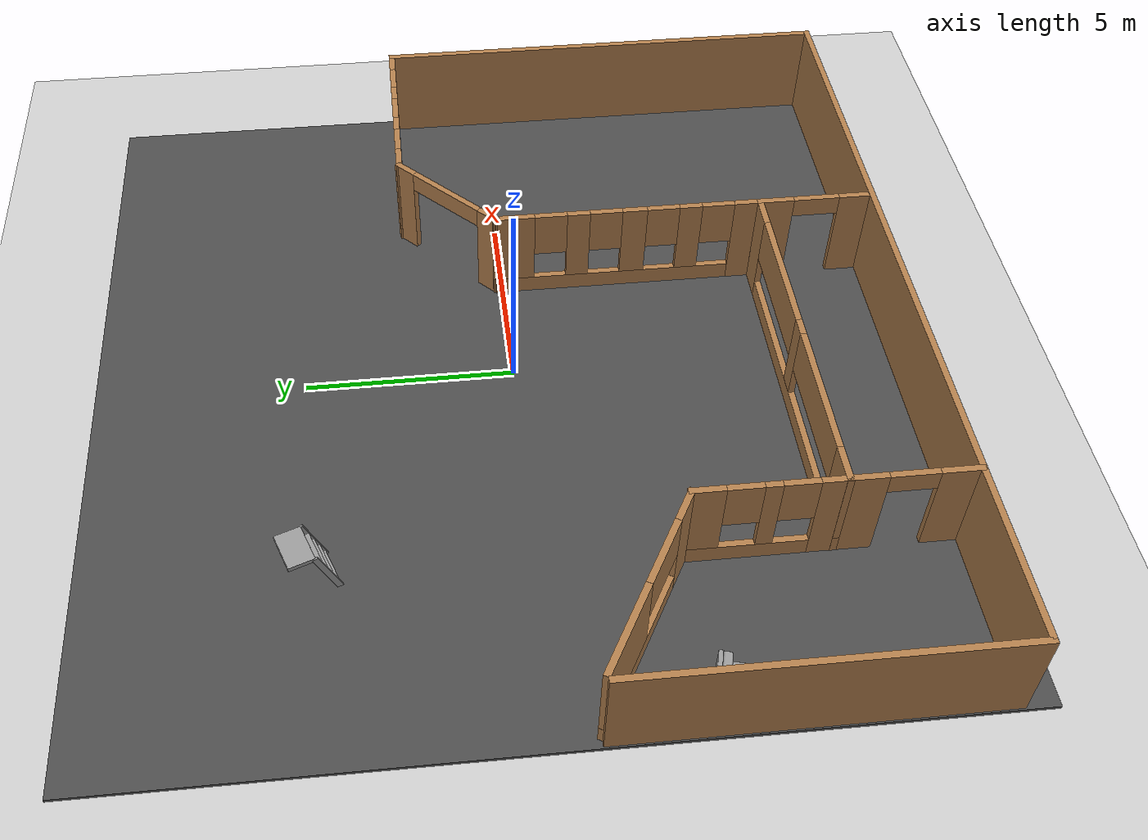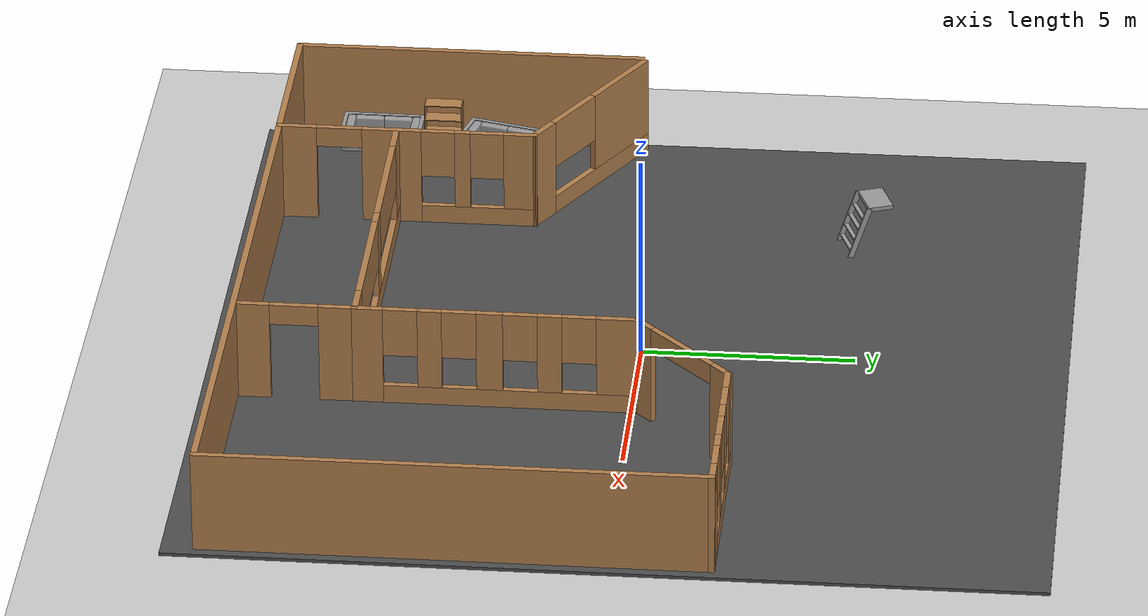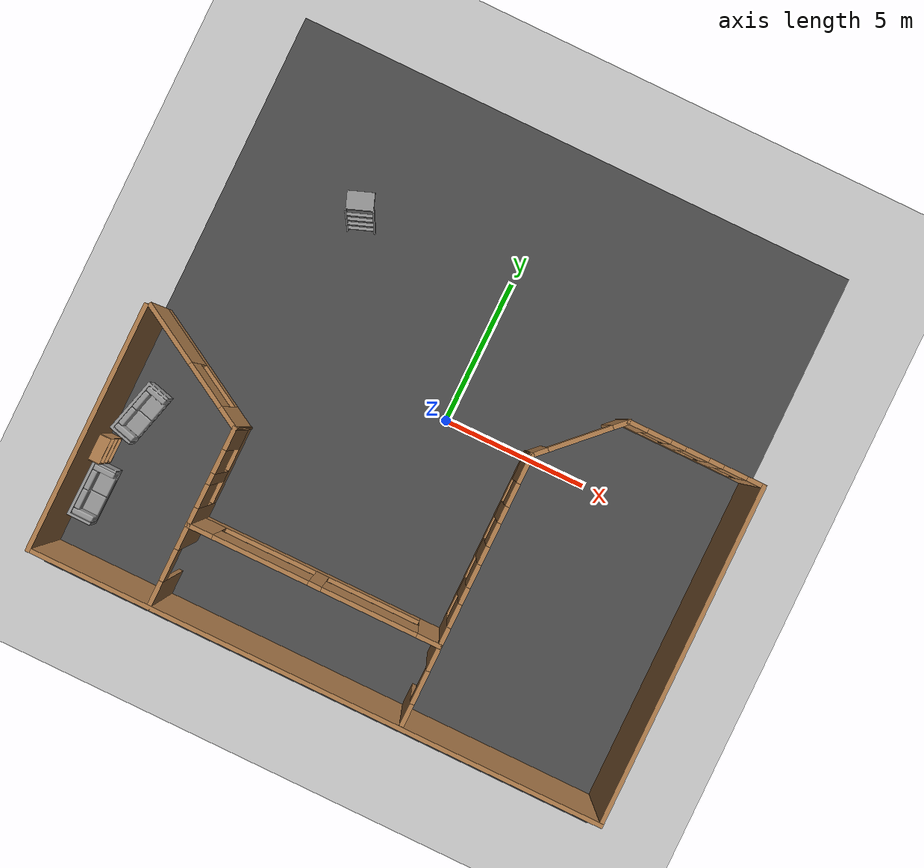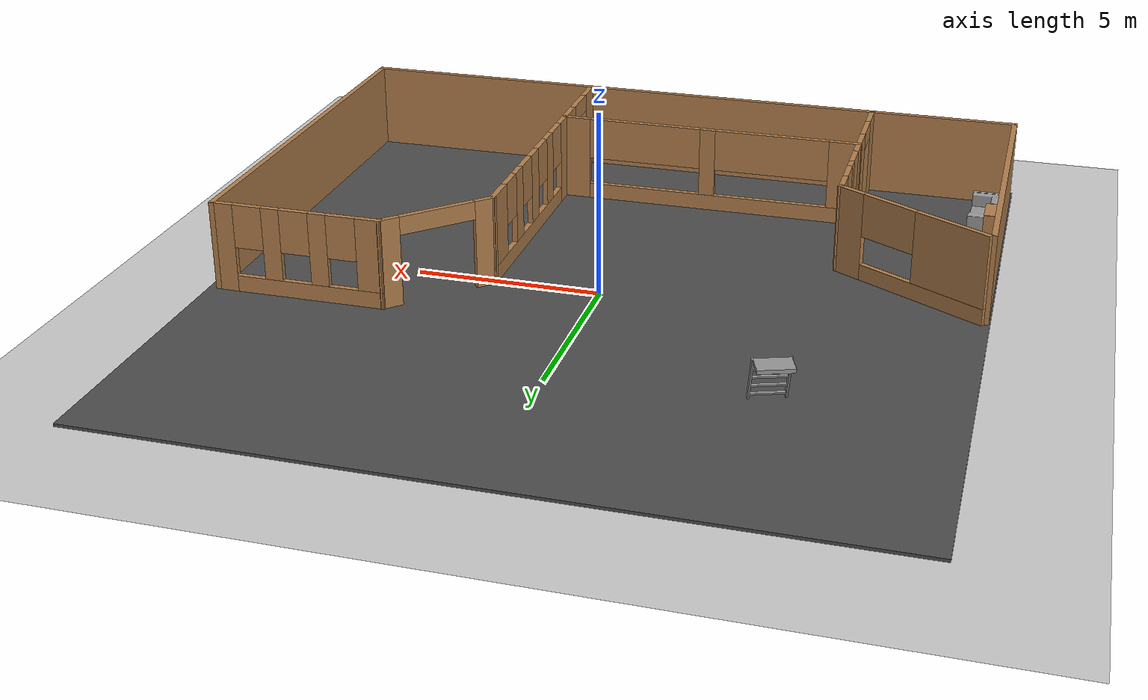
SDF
<sdf version="1.6">
 <world name="default">
  <light name="sun" type="directional">
   <pose>0 0 10 0 -0 0</pose>
   <diffuse>0.8 0.8 0.8 1</diffuse>
   <specular>0.1 0.1 0.1 1</specular>
   <attenuation>
    <range>1000</range>
    <constant>0.9</constant>
    <linear>0.01</linear>
    <quadratic>0.001</quadratic>
   </attenuation>
   <direction>-0.5 0.5 -1</direction>
  </light>
  <model name="ground_plane">
   <static>1</static>
   <link name="link">
    <collision name="collision">
     <geometry><plane><normal>0 0 1</normal><size>100 100</size></plane></geometry>
     <surface><friction><ode><mu>100</mu><mu2>50</mu2></ode></friction></surface>
    </collision>
    <visual name="visual">
     <cast_shadows>0</cast_shadows>
     <geometry><plane><normal>0 0 1</normal><size>100 100</size></plane></geometry>
     <material>
      <script><uri>file://media/materials/scripts/gazebo.material</uri><name>Gazebo/Grey</name></script>
     </material>
    </visual>
   </link>
  </model>
  <gravity>0 0 -9.8</gravity>
  <magnetic_field>6e-06 2.3e-05 -4.2e-05</magnetic_field>
  <atmosphere type="adiabatic"/>
  <physics name="default_physics" default="0" type="ode">
   <max_step_size>0.001</max_step_size>
   <real_time_factor>1</real_time_factor>
   <real_time_update_rate>1000</real_time_update_rate>
  </physics>
  <scene><ambient>0.4 0.4 0.4 1</ambient><background>0.7 0.7 0.7 1</background><shadows>1</shadows></scene>
  <spherical_coordinates>
   <surface_model>EARTH_WGS84</surface_model>
   <latitude_deg>0</latitude_deg>
   <longitude_deg>0</longitude_deg>
   <elevation>0</elevation>
   <heading_deg>0</heading_deg>
  </spherical_coordinates>
  <model name="Robocup">
   <pose>-0.0925 -3.37243 0 0 -0 0</pose>
   <link name="Wall_13">
    <collision name="Wall_13_Collision">
     <geometry><box><size>8.5 0.15 2.5</size></box></geometry>
     <pose>0 0 1.25 0 -0 0</pose>
    </collision>
    <visual name="Wall_13_Visual">
     <pose>0 0 1.25 0 -0 0</pose>
     <geometry><box><size>8.5 0.15 2.5</size></box></geometry>
     <material>
      <script><uri>file://media/materials/scripts/gazebo.material</uri><name>Gazebo/Wood</name></script>
      <ambient>1 1 1 1</ambient>
     </material>
     <meta><layer>0</layer></meta>
    </visual>
    <pose>-9.8 -1.64053 0 0 0 -1.5708</pose>
   </link>
   <link name="Wall_15">
    <collision name="Wall_15_Collision">
     <geometry><box><size>19.75 0.15 2.5</size></box></geometry>
     <pose>0 0 1.25 0 -0 0</pose>
    </collision>
    <visual name="Wall_15_Visual">
     <pose>0 0 1.25 0 -0 0</pose>
     <geometry><box><size>19.75 0.15 2.5</size></box></geometry>
     <material>
      <script><uri>file://media/materials/scripts/gazebo.material</uri><name>Gazebo/Wood</name></script>
      <ambient>1 1 1 1</ambient>
     </material>
     <meta><layer>0</layer></meta>
    </visual>
    <pose>0 -5.81553 0 0 -0 0</pose>
   </link>
   <link name="Wall_17">
    <collision name="Wall_17_Collision">
     <geometry><box><size>11.75 0.15 2.5</size></box></geometry>
     <pose>0 0 1.25 0 -0 0</pose>
    </collision>
    <visual name="Wall_17_Visual">
     <pose>0 0 1.25 0 -0 0</pose>
     <geometry><box><size>11.75 0.15 2.5</size></box></geometry>
     <material>
      <script><uri>file://media/materials/scripts/gazebo.material</uri><name>Gazebo/Wood</name></script>
      <ambient>1 1 1 1</ambient>
     </material>
     <meta><layer>0</layer></meta>
    </visual>
    <pose>9.8 -0.015532 0 0 -0 1.5708</pose>
   </link>
   <link name="Wall_18">
    <pose>7.5 5.78447 0 0 -0 3.14159</pose>
    <visual name="Wall_18_Visual_0">
     <pose>-2.04757 0 1.25 0 -0 0</pose>
     <geometry><box><size>0.654861 0.15 2.5</size></box></geometry>
     <material>
      <script><uri>file://media/materials/scripts/gazebo.material</uri><name>Gazebo/Wood</name></script>
      <ambient>1 1 1 1</ambient>
     </material>
     <meta><layer>0</layer></meta>
    </visual>
    <collision name="Wall_18_Collision_0">
     <geometry><box><size>0.654861 0.15 2.5</size></box></geometry>
     <pose>-2.04757 0 1.25 0 -0 0</pose>
    </collision>
    <visual name="Wall_18_Visual_1">
     <pose>0.327431 0 0.25 0 -0 0</pose>
     <geometry><box><size>4.09514 0.15 0.5</size></box></geometry>
     <material>
      <script><uri>file://media/materials/scripts/gazebo.material</uri><name>Gazebo/Wood</name></script>
      <ambient>1 1 1 1</ambient>
     </material>
     <meta><layer>0</layer></meta>
    </visual>
    <collision name="Wall_18_Collision_1">
     <geometry><box><size>4.09514 0.15 0.5</size></box></geometry>
     <pose>0.327431 0 0.25 0 -0 0</pose>
    </collision>
    <visual name="Wall_18_Visual_2">
     <pose>-0.672482 0 1.5 0 -0 0</pose>
     <geometry><box><size>0.495314 0.15 2</size></box></geometry>
     <material>
      <script><uri>file://media/materials/scripts/gazebo.material</uri><name>Gazebo/Wood</name></script>
      <ambient>1 1 1 1</ambient>
     </material>
     <meta><layer>0</layer></meta>
    </visual>
    <collision name="Wall_18_Collision_2">
     <geometry><box><size>0.495314 0.15 2</size></box></geometry>
     <pose>-0.672482 0 1.5 0 -0 0</pose>
    </collision>
    <visual name="Wall_18_Visual_3">
     <pose>0.622832 0 1.5 0 -0 0</pose>
     <geometry><box><size>0.495314 0.15 2</size></box></geometry>
     <material>
      <script><uri>file://media/materials/scripts/gazebo.material</uri><name>Gazebo/Wood</name></script>
      <ambient>1 1 1 1</ambient>
     </material>
     <meta><layer>0</layer></meta>
    </visual>
    <collision name="Wall_18_Collision_3">
     <geometry><box><size>0.495314 0.15 2</size></box></geometry>
     <pose>0.622832 0 1.5 0 -0 0</pose>
    </collision>
    <visual name="Wall_18_Visual_4">
     <pose>2.02275 0 1.5 0 -0 0</pose>
     <geometry><box><size>0.704511 0.15 2</size></box></geometry>
     <material>
      <script><uri>file://media/materials/scripts/gazebo.material</uri><name>Gazebo/Wood</name></script>
      <ambient>1 1 1 1</ambient>
     </material>
     <meta><layer>0</layer></meta>
    </visual>
    <collision name="Wall_18_Collision_4">
     <geometry><box><size>0.704511 0.15 2</size></box></geometry>
     <pose>2.02275 0 1.5 0 -0 0</pose>
    </collision>
    <visual name="Wall_18_Visual_5">
     <pose>-1.32014 0 1.9 0 -0 0</pose>
     <geometry><box><size>0.8 0.15 1.2</size></box></geometry>
     <material>
      <script><uri>file://media/materials/scripts/gazebo.material</uri><name>Gazebo/Wood</name></script>
      <ambient>1 1 1 1</ambient>
     </material>
     <meta><layer>0</layer></meta>
    </visual>
    <collision name="Wall_18_Collision_5">
     <geometry><box><size>0.8 0.15 1.2</size></box></geometry>
     <pose>-1.32014 0 1.9 0 -0 0</pose>
    </collision>
    <visual name="Wall_18_Visual_6">
     <pose>-0.024825 0 1.9 0 -0 0</pose>
     <geometry><box><size>0.8 0.15 1.2</size></box></geometry>
     <material>
      <script><uri>file://media/materials/scripts/gazebo.material</uri><name>Gazebo/Wood</name></script>
      <ambient>1 1 1 1</ambient>
     </material>
     <meta><layer>0</layer></meta>
    </visual>
    <collision name="Wall_18_Collision_6">
     <geometry><box><size>0.8 0.15 1.2</size></box></geometry>
     <pose>-0.024825 0 1.9 0 -0 0</pose>
    </collision>
    <visual name="Wall_18_Visual_7">
     <pose>1.27049 0 1.9 0 -0 0</pose>
     <geometry><box><size>0.8 0.15 1.2</size></box></geometry>
     <material>
      <script><uri>file://media/materials/scripts/gazebo.material</uri><name>Gazebo/Wood</name></script>
      <ambient>1 1 1 1</ambient>
     </material>
     <meta><layer>0</layer></meta>
    </visual>
    <collision name="Wall_18_Collision_7">
     <geometry><box><size>0.8 0.15 1.2</size></box></geometry>
     <pose>1.27049 0 1.9 0 -0 0</pose>
    </collision>
   </link>
   <link name="Wall_22">
    <pose>-1.38838 -2.99714 0 0 -0 3.14159</pose>
    <visual name="Wall_22_Visual_0">
     <pose>-3.95278 0 1.25 0 -0 0</pose>
     <geometry><box><size>0.844442 0.15 2.5</size></box></geometry>
     <material>
      <script><uri>file://media/materials/scripts/gazebo.material</uri><name>Gazebo/Wood</name></script>
      <ambient>1 1 1 1</ambient>
     </material>
     <meta><layer>0</layer></meta>
    </visual>
    <collision name="Wall_22_Collision_0">
     <geometry><box><size>0.844442 0.15 2.5</size></box></geometry>
     <pose>-3.95278 0 1.25 0 -0 0</pose>
    </collision>
    <visual name="Wall_22_Visual_1">
     <pose>0.422221 0 0.25 0 -0 0</pose>
     <geometry><box><size>7.90556 0.15 0.5</size></box></geometry>
     <material>
      <script><uri>file://media/materials/scripts/gazebo.material</uri><name>Gazebo/Wood</name></script>
      <ambient>1 1 1 1</ambient>
     </material>
     <meta><layer>0</layer></meta>
    </visual>
    <collision name="Wall_22_Collision_1">
     <geometry><box><size>7.90556 0.15 0.5</size></box></geometry>
     <pose>0.422221 0 0.25 0 -0 0</pose>
    </collision>
    <visual name="Wall_22_Visual_2">
     <pose>-0.031057 0 1.5 0 -0 0</pose>
     <geometry><box><size>0.449053 0.15 2</size></box></geometry>
     <material>
      <script><uri>file://media/materials/scripts/gazebo.material</uri><name>Gazebo/Wood</name></script>
      <ambient>1 1 1 1</ambient>
     </material>
     <meta><layer>0</layer></meta>
    </visual>
    <collision name="Wall_22_Collision_2">
     <geometry><box><size>0.449053 0.15 2</size></box></geometry>
     <pose>-0.031057 0 1.5 0 -0 0</pose>
    </collision>
    <visual name="Wall_22_Visual_3">
     <pose>3.92172 0 1.5 0 -0 0</pose>
     <geometry><box><size>0.906555 0.15 2</size></box></geometry>
     <material>
      <script><uri>file://media/materials/scripts/gazebo.material</uri><name>Gazebo/Wood</name></script>
      <ambient>1 1 1 1</ambient>
     </material>
     <meta><layer>0</layer></meta>
    </visual>
    <collision name="Wall_22_Collision_3">
     <geometry><box><size>0.906555 0.15 2</size></box></geometry>
     <pose>3.92172 0 1.5 0 -0 0</pose>
    </collision>
    <visual name="Wall_22_Visual_4">
     <pose>-1.89307 0 1.9 0 -0 0</pose>
     <geometry><box><size>3.27497 0.15 1.2</size></box></geometry>
     <material>
      <script><uri>file://media/materials/scripts/gazebo.material</uri><name>Gazebo/Wood</name></script>
      <ambient>1 1 1 1</ambient>
     </material>
     <meta><layer>0</layer></meta>
    </visual>
    <collision name="Wall_22_Collision_4">
     <geometry><box><size>3.27497 0.15 1.2</size></box></geometry>
     <pose>-1.89307 0 1.9 0 -0 0</pose>
    </collision>
    <visual name="Wall_22_Visual_5">
     <pose>1.83096 0 1.9 0 -0 0</pose>
     <geometry><box><size>3.27497 0.15 1.2</size></box></geometry>
     <material>
      <script><uri>file://media/materials/scripts/gazebo.material</uri><name>Gazebo/Wood</name></script>
      <ambient>1 1 1 1</ambient>
     </material>
     <meta><layer>0</layer></meta>
    </visual>
    <collision name="Wall_22_Collision_5">
     <geometry><box><size>3.27497 0.15 1.2</size></box></geometry>
     <pose>1.83096 0 1.9 0 -0 0</pose>
    </collision>
   </link>
   <link name="Wall_26">
    <pose>2.93475 0.272603 0 0 -0 1.5708</pose>
    <visual name="Wall_26_Visual_0">
     <pose>-2.98586 0 1.25 0 -0 0</pose>
     <geometry><box><size>0.718408 0.15 2.5</size></box></geometry>
     <material>
      <script><uri>file://media/materials/scripts/gazebo.material</uri><name>Gazebo/Wood</name></script>
      <ambient>1 1 1 1</ambient>
     </material>
     <meta><layer>0</layer></meta>
    </visual>
    <collision name="Wall_26_Collision_0">
     <geometry><box><size>0.718408 0.15 2.5</size></box></geometry>
     <pose>-2.98586 0 1.25 0 -0 0</pose>
    </collision>
    <visual name="Wall_26_Visual_1">
     <pose>0.359204 0 0.25 0 -0 0</pose>
     <geometry><box><size>5.97173 0.15 0.5</size></box></geometry>
     <material>
      <script><uri>file://media/materials/scripts/gazebo.material</uri><name>Gazebo/Wood</name></script>
      <ambient>1 1 1 1</ambient>
     </material>
     <meta><layer>0</layer></meta>
    </visual>
    <collision name="Wall_26_Collision_1">
     <geometry><box><size>5.97173 0.15 0.5</size></box></geometry>
     <pose>0.359204 0 0.25 0 -0 0</pose>
    </collision>
    <visual name="Wall_26_Visual_2">
     <pose>-1.54474 0 1.5 0 -0 0</pose>
     <geometry><box><size>0.563839 0.15 2</size></box></geometry>
     <material>
      <script><uri>file://media/materials/scripts/gazebo.material</uri><name>Gazebo/Wood</name></script>
      <ambient>1 1 1 1</ambient>
     </material>
     <meta><layer>0</layer></meta>
    </visual>
    <collision name="Wall_26_Collision_2">
     <geometry><box><size>0.563839 0.15 2</size></box></geometry>
     <pose>-1.54474 0 1.5 0 -0 0</pose>
    </collision>
    <visual name="Wall_26_Visual_3">
     <pose>-0.156104 0 1.5 0 -0 0</pose>
     <geometry><box><size>0.613433 0.15 2</size></box></geometry>
     <material>
      <script><uri>file://media/materials/scripts/gazebo.material</uri><name>Gazebo/Wood</name></script>
      <ambient>1 1 1 1</ambient>
     </material>
     <meta><layer>0</layer></meta>
    </visual>
    <collision name="Wall_26_Collision_3">
     <geometry><box><size>0.613433 0.15 2</size></box></geometry>
     <pose>-0.156104 0 1.5 0 -0 0</pose>
    </collision>
    <visual name="Wall_26_Visual_4">
     <pose>1.23253 0 1.5 0 -0 0</pose>
     <geometry><box><size>0.563839 0.15 2</size></box></geometry>
     <material>
      <script><uri>file://media/materials/scripts/gazebo.material</uri><name>Gazebo/Wood</name></script>
      <ambient>1 1 1 1</ambient>
     </material>
     <meta><layer>0</layer></meta>
    </visual>
    <collision name="Wall_26_Collision_4">
     <geometry><box><size>0.563839 0.15 2</size></box></geometry>
     <pose>1.23253 0 1.5 0 -0 0</pose>
    </collision>
    <visual name="Wall_26_Visual_5">
     <pose>2.82976 0 1.5 0 -0 0</pose>
     <geometry><box><size>1.03062 0.15 2</size></box></geometry>
     <material>
      <script><uri>file://media/materials/scripts/gazebo.material</uri><name>Gazebo/Wood</name></script>
      <ambient>1 1 1 1</ambient>
     </material>
     <meta><layer>0</layer></meta>
    </visual>
    <collision name="Wall_26_Collision_5">
     <geometry><box><size>1.03062 0.15 2</size></box></geometry>
     <pose>2.82976 0 1.5 0 -0 0</pose>
    </collision>
    <visual name="Wall_26_Visual_6">
     <pose>-2.22666 0 1.9 0 -0 0</pose>
     <geometry><box><size>0.8 0.15 1.2</size></box></geometry>
     <material>
      <script><uri>file://media/materials/scripts/gazebo.material</uri><name>Gazebo/Wood</name></script>
      <ambient>1 1 1 1</ambient>
     </material>
     <meta><layer>0</layer></meta>
    </visual>
    <collision name="Wall_26_Collision_6">
     <geometry><box><size>0.8 0.15 1.2</size></box></geometry>
     <pose>-2.22666 0 1.9 0 -0 0</pose>
    </collision>
    <visual name="Wall_26_Visual_7">
     <pose>-0.862821 0 1.9 0 -0 0</pose>
     <geometry><box><size>0.8 0.15 1.2</size></box></geometry>
     <material>
      <script><uri>file://media/materials/scripts/gazebo.material</uri><name>Gazebo/Wood</name></script>
      <ambient>1 1 1 1</ambient>
     </material>
     <meta><layer>0</layer></meta>
    </visual>
    <collision name="Wall_26_Collision_7">
     <geometry><box><size>0.8 0.15 1.2</size></box></geometry>
     <pose>-0.862821 0 1.9 0 -0 0</pose>
    </collision>
    <visual name="Wall_26_Visual_8">
     <pose>0.550613 0 1.9 0 -0 0</pose>
     <geometry><box><size>0.8 0.15 1.2</size></box></geometry>
     <material>
      <script><uri>file://media/materials/scripts/gazebo.material</uri><name>Gazebo/Wood</name></script>
      <ambient>1 1 1 1</ambient>
     </material>
     <meta><layer>0</layer></meta>
    </visual>
    <collision name="Wall_26_Collision_8">
     <geometry><box><size>0.8 0.15 1.2</size></box></geometry>
     <pose>0.550613 0 1.9 0 -0 0</pose>
    </collision>
    <visual name="Wall_26_Visual_9">
     <pose>1.91445 0 1.9 0 -0 0</pose>
     <geometry><box><size>0.8 0.15 1.2</size></box></geometry>
     <material>
      <script><uri>file://media/materials/scripts/gazebo.material</uri><name>Gazebo/Wood</name></script>
      <ambient>1 1 1 1</ambient>
     </material>
     <meta><layer>0</layer></meta>
    </visual>
    <collision name="Wall_26_Collision_9">
     <geometry><box><size>0.8 0.15 1.2</size></box></geometry>
     <pose>1.91445 0 1.9 0 -0 0</pose>
    </collision>
   </link>
   <link name="Wall_30">
    <pose>4.06737 4.66341 0 0 -0 0.780266</pose>
    <visual name="Wall_30_Visual_0">
     <pose>-1.36338 0 1.25 0 -0 0</pose>
     <geometry><box><size>0.610486 0.15 2.5</size></box></geometry>
     <material>
      <script><uri>file://media/materials/scripts/gazebo.material</uri><name>Gazebo/Wood</name></script>
      <ambient>1 1 1 1</ambient>
     </material>
     <meta><layer>0</layer></meta>
    </visual>
    <collision name="Wall_30_Collision_0">
     <geometry><box><size>0.610486 0.15 2.5</size></box></geometry>
     <pose>-1.36338 0 1.25 0 -0 0</pose>
    </collision>
    <visual name="Wall_30_Visual_1">
     <pose>1.36124 0 1.25 0 -0 0</pose>
     <geometry><box><size>0.614761 0.15 2.5</size></box></geometry>
     <material>
      <script><uri>file://media/materials/scripts/gazebo.material</uri><name>Gazebo/Wood</name></script>
      <ambient>1 1 1 1</ambient>
     </material>
     <meta><layer>0</layer></meta>
    </visual>
    <collision name="Wall_30_Collision_1">
     <geometry><box><size>0.614761 0.15 2.5</size></box></geometry>
     <pose>1.36124 0 1.25 0 -0 0</pose>
    </collision>
    <visual name="Wall_30_Visual_2">
     <pose>-0.002137 0 2.25 0 -0 0</pose>
     <geometry><box><size>2.11199 0.15 0.5</size></box></geometry>
     <material>
      <script><uri>file://media/materials/scripts/gazebo.material</uri><name>Gazebo/Wood</name></script>
      <ambient>1 1 1 1</ambient>
     </material>
     <meta><layer>0</layer></meta>
    </visual>
    <collision name="Wall_30_Collision_2">
     <geometry><box><size>2.11199 0.15 0.5</size></box></geometry>
     <pose>-0.002137 0 2.25 0 -0 0</pose>
    </collision>
   </link>
   <link name="Wall_32">
    <pose>2.93475 -4.3274 0 0 0 -1.5708</pose>
    <visual name="Wall_32_Visual_0">
     <pose>-0.946076 0 1.25 0 -0 0</pose>
     <geometry><box><size>0.919271 0.15 2.5</size></box></geometry>
     <material>
      <script><uri>file://media/materials/scripts/gazebo.material</uri><name>Gazebo/Wood</name></script>
      <ambient>1 1 1 1</ambient>
     </material>
     <meta><layer>0</layer></meta>
    </visual>
    <collision name="Wall_32_Collision_0">
     <geometry><box><size>0.919271 0.15 2.5</size></box></geometry>
     <pose>-0.946076 0 1.25 0 -0 0</pose>
    </collision>
    <visual name="Wall_32_Visual_1">
     <pose>1.02529 0 1.25 0 -0 0</pose>
     <geometry><box><size>0.760846 0.15 2.5</size></box></geometry>
     <material>
      <script><uri>file://media/materials/scripts/gazebo.material</uri><name>Gazebo/Wood</name></script>
      <ambient>1 1 1 1</ambient>
     </material>
     <meta><layer>0</layer></meta>
    </visual>
    <collision name="Wall_32_Collision_1">
     <geometry><box><size>0.760846 0.15 2.5</size></box></geometry>
     <pose>1.02529 0 1.25 0 -0 0</pose>
    </collision>
    <visual name="Wall_32_Visual_2">
     <pose>0.079212 0 2.25 0 -0 0</pose>
     <geometry><box><size>1.13131 0.15 0.5</size></box></geometry>
     <material>
      <script><uri>file://media/materials/scripts/gazebo.material</uri><name>Gazebo/Wood</name></script>
      <ambient>1 1 1 1</ambient>
     </material>
     <meta><layer>0</layer></meta>
    </visual>
    <collision name="Wall_32_Collision_2">
     <geometry><box><size>1.13131 0.15 0.5</size></box></geometry>
     <pose>0.079212 0 2.25 0 -0 0</pose>
    </collision>
   </link>
   <link name="Wall_36">
    <pose>-5.68275 -2.74444 0 0 -0 1.5708</pose>
    <visual name="Wall_36_Visual_0">
     <pose>-2.6475 0 1.25 0 -0 0</pose>
     <geometry><box><size>0.95501 0.15 2.5</size></box></geometry>
     <material>
      <script><uri>file://media/materials/scripts/gazebo.material</uri><name>Gazebo/Wood</name></script>
      <ambient>1 1 1 1</ambient>
     </material>
     <meta><layer>0</layer></meta>
    </visual>
    <collision name="Wall_36_Collision_0">
     <geometry><box><size>0.95501 0.15 2.5</size></box></geometry>
     <pose>-2.6475 0 1.25 0 -0 0</pose>
    </collision>
    <visual name="Wall_36_Visual_1">
     <pose>-0.370763 0 1.25 0 -0 0</pose>
     <geometry><box><size>1.42837 0.15 2.5</size></box></geometry>
     <material>
      <script><uri>file://media/materials/scripts/gazebo.material</uri><name>Gazebo/Wood</name></script>
      <ambient>1 1 1 1</ambient>
     </material>
     <meta><layer>0</layer></meta>
    </visual>
    <collision name="Wall_36_Collision_1">
     <geometry><box><size>1.42837 0.15 2.5</size></box></geometry>
     <pose>-0.370763 0 1.25 0 -0 0</pose>
    </collision>
    <visual name="Wall_36_Visual_2">
     <pose>1.73421 0 0.25 0 -0 0</pose>
     <geometry><box><size>2.78158 0.15 0.5</size></box></geometry>
     <material>
      <script><uri>file://media/materials/scripts/gazebo.material</uri><name>Gazebo/Wood</name></script>
      <ambient>1 1 1 1</ambient>
     </material>
     <meta><layer>0</layer></meta>
    </visual>
    <collision name="Wall_36_Collision_2">
     <geometry><box><size>2.78158 0.15 0.5</size></box></geometry>
     <pose>1.73421 0 0.25 0 -0 0</pose>
    </collision>
    <visual name="Wall_36_Visual_3">
     <pose>1.33325 0 1.5 0 -0 0</pose>
     <geometry><box><size>0.379661 0.15 2</size></box></geometry>
     <material>
      <script><uri>file://media/materials/scripts/gazebo.material</uri><name>Gazebo/Wood</name></script>
      <ambient>1 1 1 1</ambient>
     </material>
     <meta><layer>0</layer></meta>
    </visual>
    <collision name="Wall_36_Collision_3">
     <geometry><box><size>0.379661 0.15 2</size></box></geometry>
     <pose>1.33325 0 1.5 0 -0 0</pose>
    </collision>
    <visual name="Wall_36_Visual_4">
     <pose>2.72404 0 1.5 0 -0 0</pose>
     <geometry><box><size>0.801919 0.15 2</size></box></geometry>
     <material>
      <script><uri>file://media/materials/scripts/gazebo.material</uri><name>Gazebo/Wood</name></script>
      <ambient>1 1 1 1</ambient>
     </material>
     <meta><layer>0</layer></meta>
    </visual>
    <collision name="Wall_36_Collision_4">
     <geometry><box><size>0.801919 0.15 2</size></box></geometry>
     <pose>2.72404 0 1.5 0 -0 0</pose>
    </collision>
    <visual name="Wall_36_Visual_5">
     <pose>0.74342 0 1.9 0 -0 0</pose>
     <geometry><box><size>0.8 0.15 1.2</size></box></geometry>
     <material>
      <script><uri>file://media/materials/scripts/gazebo.material</uri><name>Gazebo/Wood</name></script>
      <ambient>1 1 1 1</ambient>
     </material>
     <meta><layer>0</layer></meta>
    </visual>
    <collision name="Wall_36_Collision_5">
     <geometry><box><size>0.8 0.15 1.2</size></box></geometry>
     <pose>0.74342 0 1.9 0 -0 0</pose>
    </collision>
    <visual name="Wall_36_Visual_6">
     <pose>1.92308 0 1.9 0 -0 0</pose>
     <geometry><box><size>0.8 0.15 1.2</size></box></geometry>
     <material>
      <script><uri>file://media/materials/scripts/gazebo.material</uri><name>Gazebo/Wood</name></script>
      <ambient>1 1 1 1</ambient>
     </material>
     <meta><layer>0</layer></meta>
    </visual>
    <collision name="Wall_36_Collision_6">
     <geometry><box><size>0.8 0.15 1.2</size></box></geometry>
     <pose>1.92308 0 1.9 0 -0 0</pose>
    </collision>
    <visual name="Wall_36_Visual_7">
     <pose>-1.62747 0 2.25 0 -0 0</pose>
     <geometry><box><size>1.08505 0.15 0.5</size></box></geometry>
     <material>
      <script><uri>file://media/materials/scripts/gazebo.material</uri><name>Gazebo/Wood</name></script>
      <ambient>1 1 1 1</ambient>
     </material>
     <meta><layer>0</layer></meta>
    </visual>
    <collision name="Wall_36_Collision_7">
     <geometry><box><size>1.08505 0.15 0.5</size></box></geometry>
     <pose>-1.62747 0 2.25 0 -0 0</pose>
    </collision>
   </link>
   <link name="Wall_37">
    <pose>-7.67461 1.45555 0 0 -0 2.61799</pose>
    <visual name="Wall_37_Visual_0">
     <pose>-1.9437 0 1.25 0 -0 0</pose>
     <geometry><box><size>0.862601 0.15 2.5</size></box></geometry>
     <material>
      <script><uri>file://media/materials/scripts/gazebo.material</uri><name>Gazebo/Wood</name></script>
      <ambient>1 1 1 1</ambient>
     </material>
     <meta><layer>0</layer></meta>
    </visual>
    <collision name="Wall_37_Collision_0">
     <geometry><box><size>0.862601 0.15 2.5</size></box></geometry>
     <pose>-1.9437 0 1.25 0 -0 0</pose>
    </collision>
    <visual name="Wall_37_Visual_1">
     <pose>0.431301 0 0.25 0 -0 0</pose>
     <geometry><box><size>3.8874 0.15 0.5</size></box></geometry>
     <material>
      <script><uri>file://media/materials/scripts/gazebo.material</uri><name>Gazebo/Wood</name></script>
      <ambient>1 1 1 1</ambient>
     </material>
     <meta><layer>0</layer></meta>
    </visual>
    <collision name="Wall_37_Collision_1">
     <geometry><box><size>3.8874 0.15 0.5</size></box></geometry>
     <pose>0.431301 0 0.25 0 -0 0</pose>
    </collision>
    <visual name="Wall_37_Visual_2">
     <pose>1.25518 0 1.5 0 -0 0</pose>
     <geometry><box><size>2.23965 0.15 2</size></box></geometry>
     <material>
      <script><uri>file://media/materials/scripts/gazebo.material</uri><name>Gazebo/Wood</name></script>
      <ambient>1 1 1 1</ambient>
     </material>
     <meta><layer>0</layer></meta>
    </visual>
    <collision name="Wall_37_Collision_2">
     <geometry><box><size>2.23965 0.15 2</size></box></geometry>
     <pose>1.25518 0 1.5 0 -0 0</pose>
    </collision>
    <visual name="Wall_37_Visual_3">
     <pose>-0.688523 0 1.9 0 -0 0</pose>
     <geometry><box><size>1.64775 0.15 1.2</size></box></geometry>
     <material>
      <script><uri>file://media/materials/scripts/gazebo.material</uri><name>Gazebo/Wood</name></script>
      <ambient>1 1 1 1</ambient>
     </material>
     <meta><layer>0</layer></meta>
    </visual>
    <collision name="Wall_37_Collision_3">
     <geometry><box><size>1.64775 0.15 1.2</size></box></geometry>
     <pose>-0.688523 0 1.9 0 -0 0</pose>
    </collision>
   </link>
   <static>1</static>
  </model>
  <model name="asphalt_plane">
   <static>1</static>
   <link name="link">
    <collision name="collision"><geometry><box><size>20 20 0.1</size></box></geometry></collision>
    <visual name="visual">
     <cast_shadows>0</cast_shadows>
     <geometry><box><size>20 20 0.1</size></box></geometry>
     <material>
      <script>
       <uri>model://asphalt_plane/materials/scripts</uri>
       <uri>model://asphalt_plane/materials/textures</uri>
       <name>vrc/asphalt</name>
      </script>
     </material>
    </visual>
   </link>
  </model>
  <model name="ladder_70deg_0rails">
   <static>1</static>
   <link name="step0">
    <pose>0 0.097059 0.266667 0 -0 0</pose>
    <inertial>
     <mass>9.75482</mass>
     <inertia>
      <ixx>0.00957124</ixx>
      <iyy>0.65963</iyy>
      <izz>0.666842</izz>
      <ixy>0</ixy>
      <ixz>0</ixz>
      <iyz>0</iyz>
     </inertia>
    </inertial>
    <collision name="collision"><geometry><box><size>0.9 0.1016 0.0381</size></box></geometry></collision>
    <visual name="visual">
     <geometry><box><size>0.9 0.1016 0.0381</size></box></geometry>
     <material>
      <script><uri>file://media/materials/scripts/gazebo.material</uri><name>Gazebo/Grey</name></script>
     </material>
    </visual>
   </link>
   <link name="step1">
    <pose>0 0.194117 0.533333 0 -0 0</pose>
    <inertial>
     <mass>9.75482</mass>
     <inertia>
      <ixx>0.00957124</ixx>
      <iyy>0.65963</iyy>
      <izz>0.666842</izz>
      <ixy>0</ixy>
      <ixz>0</ixz>
      <iyz>0</iyz>
     </inertia>
    </inertial>
    <collision name="collision"><geometry><box><size>0.9 0.1016 0.0381</size></box></geometry></collision>
    <visual name="visual">
     <geometry><box><size>0.9 0.1016 0.0381</size></box></geometry>
     <material>
      <script><uri>file://media/materials/scripts/gazebo.material</uri><name>Gazebo/Grey</name></script>
     </material>
    </visual>
   </link>
   <link name="step2">
    <pose>0 0.291176 0.8 0 -0 0</pose>
    <inertial>
     <mass>9.75482</mass>
     <inertia>
      <ixx>0.00957124</ixx>
      <iyy>0.65963</iyy>
      <izz>0.666842</izz>
      <ixy>0</ixy>
      <ixz>0</ixz>
      <iyz>0</iyz>
     </inertia>
    </inertial>
    <collision name="collision"><geometry><box><size>0.9 0.1016 0.0381</size></box></geometry></collision>
    <visual name="visual">
     <geometry><box><size>0.9 0.1016 0.0381</size></box></geometry>
     <material>
      <script><uri>file://media/materials/scripts/gazebo.material</uri><name>Gazebo/Grey</name></script>
     </material>
    </visual>
   </link>
   <link name="step3">
    <pose>0 0.388235 1.06667 0 -0 0</pose>
    <inertial>
     <mass>9.75482</mass>
     <inertia>
      <ixx>0.00957124</ixx>
      <iyy>0.65963</iyy>
      <izz>0.666842</izz>
      <ixy>0</ixy>
      <ixz>0</ixz>
      <iyz>0</iyz>
     </inertia>
    </inertial>
    <collision name="collision"><geometry><box><size>0.9 0.1016 0.0381</size></box></geometry></collision>
    <visual name="visual">
     <geometry><box><size>0.9 0.1016 0.0381</size></box></geometry>
     <material>
      <script><uri>file://media/materials/scripts/gazebo.material</uri><name>Gazebo/Grey</name></script>
     </material>
    </visual>
   </link>
   <link name="step4">
    <pose>0 0.485294 1.33333 0 -0 0</pose>
    <inertial>
     <mass>9.75482</mass>
     <inertia>
      <ixx>0.00957124</ixx>
      <iyy>0.65963</iyy>
      <izz>0.666842</izz>
      <ixy>0</ixy>
      <ixz>0</ixz>
      <iyz>0</iyz>
     </inertia>
    </inertial>
    <collision name="collision"><geometry><box><size>0.9 0.1016 0.0381</size></box></geometry></collision>
    <visual name="visual">
     <geometry><box><size>0.9 0.1016 0.0381</size></box></geometry>
     <material>
      <script><uri>file://media/materials/scripts/gazebo.material</uri><name>Gazebo/Grey</name></script>
     </material>
    </visual>
   </link>
   <link name="step5">
    <pose>0 0.582352 1.6 0 -0 0</pose>
    <inertial>
     <mass>9.75482</mass>
     <inertia>
      <ixx>0.00957124</ixx>
      <iyy>0.65963</iyy>
      <izz>0.666842</izz>
      <ixy>0</ixy>
      <ixz>0</ixz>
      <iyz>0</iyz>
     </inertia>
    </inertial>
    <collision name="collision"><geometry><box><size>0.9 0.1016 0.0381</size></box></geometry></collision>
    <visual name="visual">
     <geometry><box><size>0.9 0.1016 0.0381</size></box></geometry>
     <material>
      <script><uri>file://media/materials/scripts/gazebo.material</uri><name>Gazebo/Grey</name></script>
     </material>
    </visual>
   </link>
   <link name="step6">
    <pose>0 0.679411 1.86667 0 -0 0</pose>
    <inertial>
     <mass>9.75482</mass>
     <inertia>
      <ixx>0.00957124</ixx>
      <iyy>0.65963</iyy>
      <izz>0.666842</izz>
      <ixy>0</ixy>
      <ixz>0</ixz>
      <iyz>0</iyz>
     </inertia>
    </inertial>
    <collision name="collision"><geometry><box><size>0.9 0.1016 0.0381</size></box></geometry></collision>
    <visual name="visual">
     <geometry><box><size>0.9 0.1016 0.0381</size></box></geometry>
     <material>
      <script><uri>file://media/materials/scripts/gazebo.material</uri><name>Gazebo/Grey</name></script>
     </material>
    </visual>
   </link>
   <link name="step7">
    <pose>0 0.77647 2.13333 0 -0 0</pose>
    <inertial>
     <mass>9.75482</mass>
     <inertia>
      <ixx>0.00957124</ixx>
      <iyy>0.65963</iyy>
      <izz>0.666842</izz>
      <ixy>0</ixy>
      <ixz>0</ixz>
      <iyz>0</iyz>
     </inertia>
    </inertial>
    <collision name="collision"><geometry><box><size>0.9 0.1016 0.0381</size></box></geometry></collision>
    <visual name="visual">
     <geometry><box><size>0.9 0.1016 0.0381</size></box></geometry>
     <material>
      <script><uri>file://media/materials/scripts/gazebo.material</uri><name>Gazebo/Grey</name></script>
     </material>
    </visual>
   </link>
   <link name="landing">
    <pose>0 1.17353 2.4 0 -0 0</pose>
    <inertial>
     <mass>57.6072</mass>
     <inertia><ixx>1.73518</ixx><iyy>3.89545</iyy><izz>5.6167</izz><ixy>0</ixy><ixz>0</ixz><iyz>0</iyz></inertia>
    </inertial>
    <collision name="collision"><geometry><box><size>0.9 0.6 0.1016</size></box></geometry></collision>
    <visual name="visual">
     <geometry><box><size>0.9 0.6 0.1016</size></box></geometry>
     <material>
      <script><uri>file://media/materials/scripts/gazebo.material</uri><name>Gazebo/Grey</name></script>
     </material>
    </visual>
   </link>
   <link name="left_side_wall">
    <pose>-0.45 0.436764 1.2 1.22173 -0 0</pose>
    <collision name="collision"><geometry><box><size>0.0508 2.63403 0.13</size></box></geometry></collision>
    <visual name="visual">
     <geometry><box><size>0.0508 2.63403 0.13</size></box></geometry>
     <material>
      <script><uri>file://media/materials/scripts/gazebo.material</uri><name>Gazebo/Grey</name></script>
     </material>
    </visual>
   </link>
   <link name="right_side_wall">
    <pose>0.45 0.436764 1.2 1.22173 -0 0</pose>
    <collision name="collision"><geometry><box><size>0.0508 2.63403 0.13</size></box></geometry></collision>
    <visual name="visual">
     <geometry><box><size>0.0508 2.63403 0.13</size></box></geometry>
     <material>
      <script><uri>file://media/materials/scripts/gazebo.material</uri><name>Gazebo/Grey</name></script>
     </material>
    </visual>
   </link>
   <pose>-5.12546 4.02899 -1.14242 0 -0 0.352838</pose>
  </model>
  <model name="sofa">
   <pose>-7.62405 -4.41976 0.056498 1.57079 -0 0</pose>
   <static>1</static>
   <link name="body">
    <visual name="visual">
     <geometry><mesh><uri>file://sofa/The_Couch.dae</uri><scale>2.5 2.5 2.5</scale></mesh></geometry>
    </visual>
   </link>
  </model>
  <model name="sofa_clone">
   <pose>-7.85848 -7.04483 0.056497 1.57079 2e-06 0.249943</pose>
   <static>1</static>
   <link name="body">
    <visual name="visual">
     <geometry><mesh><uri>file://sofa/The_Couch.dae</uri><scale>2.5 2.5 2.5</scale></mesh></geometry>
    </visual>
   </link>
  </model>
  <model name="bookshelf">
   <static>1</static>
   <link name="link">
    <inertial><mass>1</mass></inertial>
    <collision name="back">
     <pose>0 0.005 0.6 0 -0 0</pose>
     <geometry><box><size>0.9 0.01 1.2</size></box></geometry>
    </collision>
    <visual name="visual1">
     <pose>0 0.005 0.6 0 -0 0</pose>
     <geometry><box><size>0.9 0.01 1.2</size></box></geometry>
     <material>
      <script><uri>file://media/materials/scripts/gazebo.material</uri><name>Gazebo/Wood</name></script>
     </material>
    </visual>
    <collision name="left_side">
     <pose>0.45 -0.195 0.6 0 -0 0</pose>
     <geometry><box><size>0.02 0.4 1.2</size></box></geometry>
    </collision>
    <visual name="visual2">
     <pose>0.45 -0.195 0.6 0 -0 0</pose>
     <geometry><box><size>0.02 0.4 1.2</size></box></geometry>
     <material>
      <script><uri>file://media/materials/scripts/gazebo.material</uri><name>Gazebo/Wood</name></script>
     </material>
    </visual>
    <collision name="right_side">
     <pose>-0.45 -0.195 0.6 0 -0 0</pose>
     <geometry><box><size>0.02 0.4 1.2</size></box></geometry>
    </collision>
    <visual name="visual3">
     <pose>-0.45 -0.195 0.6 0 -0 0</pose>
     <geometry><box><size>0.02 0.4 1.2</size></box></geometry>
     <material>
      <script><uri>file://media/materials/scripts/gazebo.material</uri><name>Gazebo/Wood</name></script>
     </material>
    </visual>
    <collision name="bottom">
     <pose>0 -0.195 0.03 0 -0 0</pose>
     <geometry><box><size>0.88 0.4 0.06</size></box></geometry>
    </collision>
    <visual name="visual4">
     <pose>0 -0.195 0.03 0 -0 0</pose>
     <geometry><box><size>0.88 0.4 0.06</size></box></geometry>
     <material>
      <script><uri>file://media/materials/scripts/gazebo.material</uri><name>Gazebo/Wood</name></script>
     </material>
    </visual>
    <collision name="top">
     <pose>0 -0.195 1.19 0 -0 0</pose>
     <geometry><box><size>0.88 0.4 0.02</size></box></geometry>
    </collision>
    <visual name="visual5">
     <pose>0 -0.195 1.19 0 -0 0</pose>
     <geometry><box><size>0.88 0.4 0.02</size></box></geometry>
     <material>
      <script><uri>file://media/materials/scripts/gazebo.material</uri><name>Gazebo/Wood</name></script>
     </material>
    </visual>
    <collision name="low_shelf">
     <pose>0 -0.195 0.43 0 -0 0</pose>
     <geometry><box><size>0.88 0.4 0.02</size></box></geometry>
    </collision>
    <visual name="visual6">
     <pose>0 -0.195 0.43 0 -0 0</pose>
     <geometry><box><size>0.88 0.4 0.02</size></box></geometry>
     <material>
      <script><uri>file://media/materials/scripts/gazebo.material</uri><name>Gazebo/Wood</name></script>
     </material>
    </visual>
    <collision name="high_shelf">
     <pose>0 -0.195 0.8 0 -0 0</pose>
     <geometry><box><size>0.88 0.4 0.02</size></box></geometry>
    </collision>
    <visual name="visual7">
     <pose>0 -0.195 0.8 0 -0 0</pose>
     <geometry><box><size>0.88 0.4 0.02</size></box></geometry>
     <material>
      <script><uri>file://media/materials/scripts/gazebo.material</uri><name>Gazebo/Wood</name></script>
     </material>
    </visual>
   </link>
   <pose>-9.81558 -5.65703 0 0 -0 1.57</pose>
  </model>
 </world>
</sdf>
